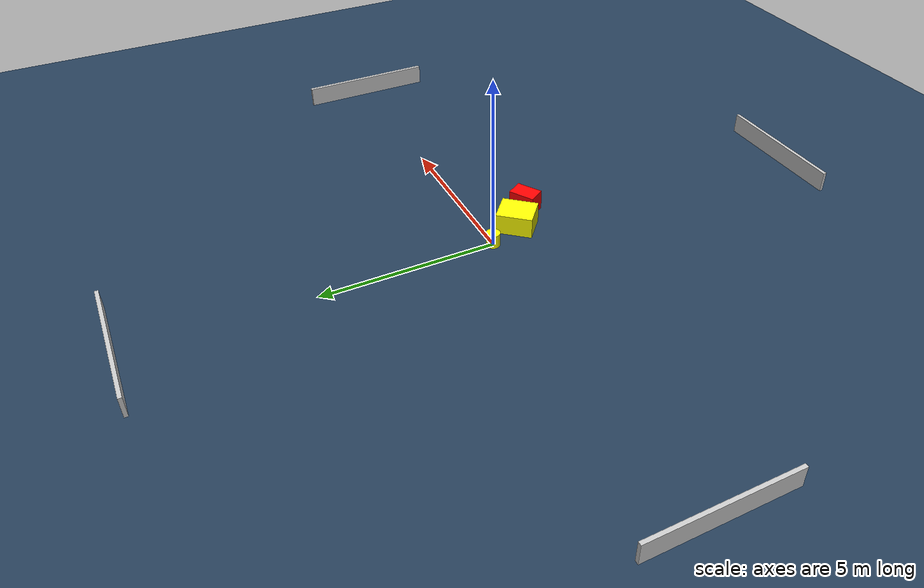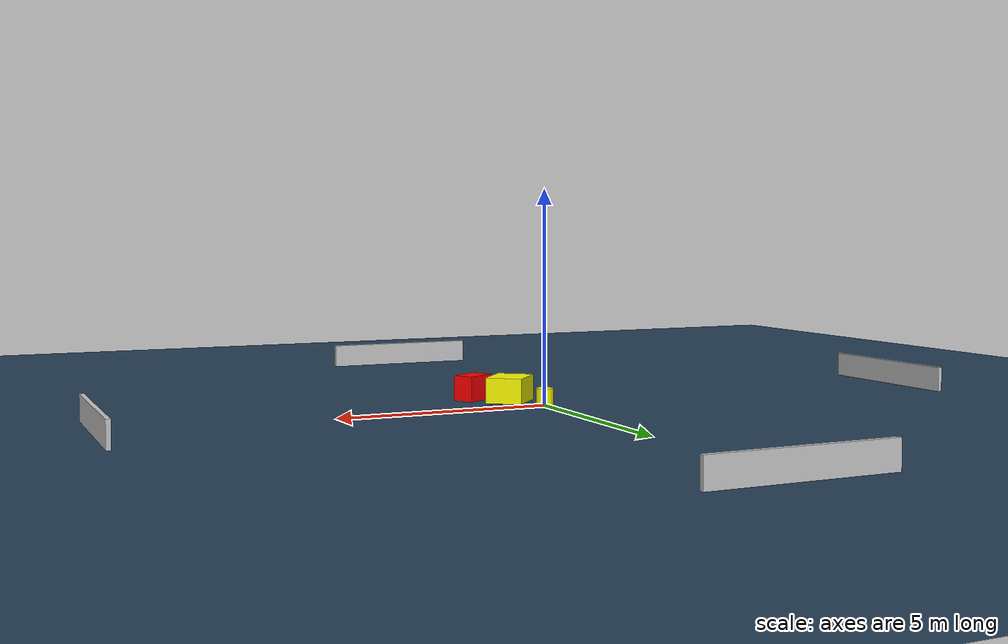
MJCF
<?xml version="1.0" ?>
<mujoco model="generated_environment">
  <option timestep="0.01" integrator="RK4" cone="elliptic"/>
  <default>
    <geom density="1"/>
  </default>
  <asset>
    <texture builtin="gradient" height="3072" name="skybox" rgb1="0.3 0.5 0.7" rgb2="0 0 0" type="skybox" width="512"/>
    <texture builtin="checker" height="300" name="groundplane" rgb1="0.2 0.3 0.4" rgb2="0.1 0.2 0.3" type="2d" width="300"/>
    <material name="groundplane" reflectance="0.2" texrepeat="5 5" texture="groundplane"/>
  </asset>
  <worldbody>
    <light dir="0 0 -1" directional="true" pos="0 0 1.5"/>
    <geom condim="3" friction="0.5 0.005 0.001" material="groundplane" name="floor" pos="0 0 0" size="0 0 0.05" type="plane"/>
    <body name="walls">
      <geom name="wall_1" condim="4" pos="-10.0 0.0 0.3" rgba="0.800000011920929 0.800000011920929 0.800000011920929 1.0" size="0.05 2.0 0.3" type="box"/>
      <geom name="wall_2" condim="4" pos="10.0 0.0 0.3" rgba="0.800000011920929 0.800000011920929 0.800000011920929 1.0" size="0.05 2.0 0.3" type="box"/>
      <geom name="wall_3" condim="4" pos="0.0 -10.0 0.3" rgba="0.800000011920929 0.800000011920929 0.800000011920929 1.0" size="2.0 0.05 0.3" type="box"/>
      <geom name="wall_4" condim="4" pos="0.0 10.0 0.3" rgba="0.800000011920929 0.800000011920929 0.800000011920929 1.0" size="2.0 0.05 0.3" type="box"/>
    </body>
    <body name="robot">
      <joint name="joint_x" type="slide" pos="0 0 0" axis="1 0 0"/>
      <joint name="joint_y" type="slide" pos="0 0 0" axis="0 1 0"/>
      <geom name="robot" type="cylinder" pos="0.0 0.0 0.2" size="0.2 0.2 0.0" mass="5.0" friction="1.0 0.005 0.0001" condim="4" rgba="1.0 1.0 0.0 1.0"/>
    </body>
    <body name="obstacle_1_movable">
      <geom name="obstacle_1_movable" condim="4" pos="0.45170068387496265 -0.979750417978396 0.3" euler="0 0 229.46929681040584" friction="0.0 0.005 0.001" rgba="1.0 1.0 0.0 1.0" size="0.5189545570859915 0.4361373936807877 0.3" type="box" mass="0.1"/>
      <joint type="free"/>
    </body>
    <body name="obstacle_2_static">
      <geom name="obstacle_2_static" condim="4" pos="1.1364860731766755 -1.6114523195627812 0.3" euler="0 0 301.15985268449134" friction="0.0 0.005 0.001" rgba="1.0 0.0 0.0 1.0" size="0.25691038120314835 0.3842865229295971 0.3" type="box"/>
    </body>
  </worldbody>
  <actuator>
    <motor name="actuator_x" joint="joint_x" gear="1" ctrlrange="-1 1"/>
    <motor name="actuator_y" joint="joint_y" gear="1" ctrlrange="-1 1"/>
  </actuator>
</mujoco>
